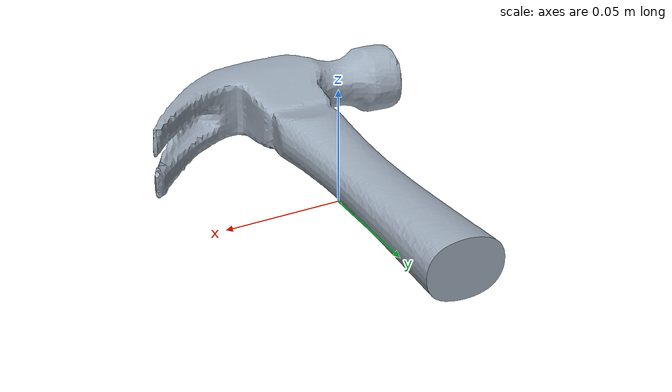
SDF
<?xml version="1.0"?>
<!-- Generated by generate_models.py. Benchmark mass and collision
     approximations are documented in physics_models.json. -->
<sdf version="1.7" xmlns:drake="http://drake.mit.edu">
  <model name="hammer_controller"><link name="hammer_base">
    <inertial><pose>-0.00593798277438 -0.0248726645548 0.0166157044401 0 0 0</pose>
      <mass>0.1</mass><inertia><ixx>0.000308249699332</ixx><iyy>5.80951764793e-05</iyy><izz>0.000357966482068</izz><ixy>-1.89269398065e-05</ixy><ixz>-1.06767496647e-06</ixz><iyz>7.02252903359e-07</iyz></inertia></inertial>
    <visual name="object_visual"><geometry><mesh><uri>hammer_centered.obj</uri>
      </mesh></geometry><material><diffuse>0.62 0.67 0.73 1</diffuse></material></visual>
    <collision name="hull_00"><geometry><mesh>
      <uri>collision/hammer_00.obj</uri><drake:declare_convex/></mesh></geometry>
      <drake:proximity_properties><drake:mu_static>0.3</drake:mu_static><drake:mu_dynamic>0.3</drake:mu_dynamic></drake:proximity_properties></collision>
    <collision name="hull_01"><geometry><mesh>
      <uri>collision/hammer_01.obj</uri><drake:declare_convex/></mesh></geometry>
      <drake:proximity_properties><drake:mu_static>0.3</drake:mu_static><drake:mu_dynamic>0.3</drake:mu_dynamic></drake:proximity_properties></collision>
    <collision name="hull_02"><geometry><mesh>
      <uri>collision/hammer_02.obj</uri><drake:declare_convex/></mesh></geometry>
      <drake:proximity_properties><drake:mu_static>0.3</drake:mu_static><drake:mu_dynamic>0.3</drake:mu_dynamic></drake:proximity_properties></collision>
    <collision name="hull_03"><geometry><mesh>
      <uri>collision/hammer_03.obj</uri><drake:declare_convex/></mesh></geometry>
      <drake:proximity_properties><drake:mu_static>0.3</drake:mu_static><drake:mu_dynamic>0.3</drake:mu_dynamic></drake:proximity_properties></collision>
    <collision name="hull_04"><geometry><mesh>
      <uri>collision/hammer_04.obj</uri><drake:declare_convex/></mesh></geometry>
      <drake:proximity_properties><drake:mu_static>0.3</drake:mu_static><drake:mu_dynamic>0.3</drake:mu_dynamic></drake:proximity_properties></collision>
    <collision name="hull_05"><geometry><mesh>
      <uri>collision/hammer_05.obj</uri><drake:declare_convex/></mesh></geometry>
      <drake:proximity_properties><drake:mu_static>0.3</drake:mu_static><drake:mu_dynamic>0.3</drake:mu_dynamic></drake:proximity_properties></collision>
    <collision name="hull_06"><geometry><mesh>
      <uri>collision/hammer_06.obj</uri><drake:declare_convex/></mesh></geometry>
      <drake:proximity_properties><drake:mu_static>0.3</drake:mu_static><drake:mu_dynamic>0.3</drake:mu_dynamic></drake:proximity_properties></collision>
    <collision name="hull_07"><geometry><mesh>
      <uri>collision/hammer_07.obj</uri><drake:declare_convex/></mesh></geometry>
      <drake:proximity_properties><drake:mu_static>0.3</drake:mu_static><drake:mu_dynamic>0.3</drake:mu_dynamic></drake:proximity_properties></collision>
    <!-- Native contact wiring requires these three spheres LAST. -->
    <collision name="ground_witness_0"><pose>-0.01241 0.090173 0.001 0 0 0</pose>
      <geometry><sphere><radius>0.001</radius></sphere></geometry>
      <drake:proximity_properties><drake:mu_static>0.3</drake:mu_static><drake:mu_dynamic>0.3</drake:mu_dynamic></drake:proximity_properties></collision>
    <collision name="ground_witness_1"><pose>-0.064913 -0.081815 0.001 0 0 0</pose>
      <geometry><sphere><radius>0.001</radius></sphere></geometry>
      <drake:proximity_properties><drake:mu_static>0.3</drake:mu_static><drake:mu_dynamic>0.3</drake:mu_dynamic></drake:proximity_properties></collision>
    <collision name="ground_witness_2"><pose>0.065743 -0.035783 0.001 0 0 0</pose>
      <geometry><sphere><radius>0.001</radius></sphere></geometry>
      <drake:proximity_properties><drake:mu_static>0.3</drake:mu_static><drake:mu_dynamic>0.3</drake:mu_dynamic></drake:proximity_properties></collision>
  </link></model>
</sdf>
